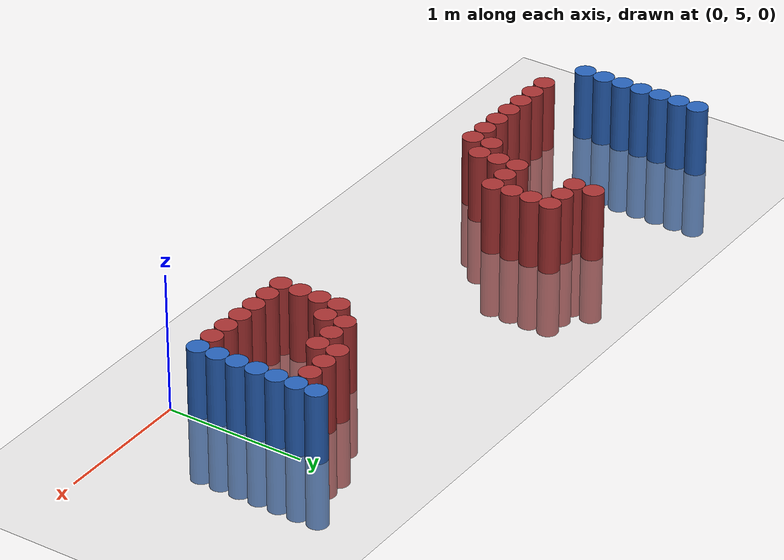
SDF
<sdf version="1.6">
 <world name="default">
  <model name="ground_plane">
   <static>1</static>
   <link name="link">
    <collision name="collision">
     <geometry><plane><normal>0 0 1</normal><size>100 100</size></plane></geometry>
     <surface><friction><ode><mu>100</mu><mu2>50</mu2></ode></friction></surface>
    </collision>
    <visual name="visual">
     <cast_shadows>0</cast_shadows>
     <geometry><plane><normal>0 0 1</normal><size>100 100</size></plane></geometry>
     <material>
      <script><uri>file://media/materials/scripts/gazebo.material</uri><name>Gazebo/Grey</name></script>
     </material>
    </visual>
   </link>
  </model>
  <model name="unit_cylinder_97">
   <static>1</static>
   <pose>-4.425000 5.325000 0.000000 0.000000 0.000000 0.000000</pose>
   <link name="link">
    <inertial>
     <mass>1</mass>
     <inertia><ixx>0.145833</ixx><ixy>0</ixy><ixz>0</ixz><iyy>0.145833</iyy><iyz>0</iyz><izz>0.125</izz></inertia>
    </inertial>
    <collision name="collision">
     <geometry><cylinder><radius>0.075000</radius><length>1</length></cylinder></geometry>
    </collision>
    <visual name="visual">
     <geometry><cylinder><radius>0.075000</radius><length>1</length></cylinder></geometry>
     <material>
      <ambient>0.152000 0.379000 0.720000 1</ambient>
      <diffuse>0.152000 0.379000 0.720000 1</diffuse>
     </material>
     <material>
      <script><name>Gazebo/Grey</name><uri>file://media/materials/scripts/gazebo.material</uri></script>
     </material>
    </visual>
   </link>
  </model>
  <model name="unit_cylinder_98">
   <static>1</static>
   <pose>-4.425000 5.475000 0.000000 0.000000 0.000000 0.000000</pose>
   <link name="link">
    <inertial>
     <mass>1</mass>
     <inertia><ixx>0.145833</ixx><ixy>0</ixy><ixz>0</ixz><iyy>0.145833</iyy><iyz>0</iyz><izz>0.125</izz></inertia>
    </inertial>
    <collision name="collision">
     <geometry><cylinder><radius>0.075000</radius><length>1</length></cylinder></geometry>
    </collision>
    <visual name="visual">
     <geometry><cylinder><radius>0.075000</radius><length>1</length></cylinder></geometry>
     <material>
      <ambient>0.152000 0.379000 0.720000 1</ambient>
      <diffuse>0.152000 0.379000 0.720000 1</diffuse>
     </material>
     <material>
      <script><name>Gazebo/Grey</name><uri>file://media/materials/scripts/gazebo.material</uri></script>
     </material>
    </visual>
   </link>
  </model>
  <model name="unit_cylinder_99">
   <static>1</static>
   <pose>-4.425000 5.625000 0.000000 0.000000 0.000000 0.000000</pose>
   <link name="link">
    <inertial>
     <mass>1</mass>
     <inertia><ixx>0.145833</ixx><ixy>0</ixy><ixz>0</ixz><iyy>0.145833</iyy><iyz>0</iyz><izz>0.125</izz></inertia>
    </inertial>
    <collision name="collision">
     <geometry><cylinder><radius>0.075000</radius><length>1</length></cylinder></geometry>
    </collision>
    <visual name="visual">
     <geometry><cylinder><radius>0.075000</radius><length>1</length></cylinder></geometry>
     <material>
      <ambient>0.152000 0.379000 0.720000 1</ambient>
      <diffuse>0.152000 0.379000 0.720000 1</diffuse>
     </material>
     <material>
      <script><name>Gazebo/Grey</name><uri>file://media/materials/scripts/gazebo.material</uri></script>
     </material>
    </visual>
   </link>
  </model>
  <model name="unit_cylinder_100">
   <static>1</static>
   <pose>-4.425000 5.775000 0.000000 0.000000 0.000000 0.000000</pose>
   <link name="link">
    <inertial>
     <mass>1</mass>
     <inertia><ixx>0.145833</ixx><ixy>0</ixy><ixz>0</ixz><iyy>0.145833</iyy><iyz>0</iyz><izz>0.125</izz></inertia>
    </inertial>
    <collision name="collision">
     <geometry><cylinder><radius>0.075000</radius><length>1</length></cylinder></geometry>
    </collision>
    <visual name="visual">
     <geometry><cylinder><radius>0.075000</radius><length>1</length></cylinder></geometry>
     <material>
      <ambient>0.152000 0.379000 0.720000 1</ambient>
      <diffuse>0.152000 0.379000 0.720000 1</diffuse>
     </material>
     <material>
      <script><name>Gazebo/Grey</name><uri>file://media/materials/scripts/gazebo.material</uri></script>
     </material>
    </visual>
   </link>
  </model>
  <model name="unit_cylinder_101">
   <static>1</static>
   <pose>-4.425000 5.925000 0.000000 0.000000 0.000000 0.000000</pose>
   <link name="link">
    <inertial>
     <mass>1</mass>
     <inertia><ixx>0.145833</ixx><ixy>0</ixy><ixz>0</ixz><iyy>0.145833</iyy><iyz>0</iyz><izz>0.125</izz></inertia>
    </inertial>
    <collision name="collision">
     <geometry><cylinder><radius>0.075000</radius><length>1</length></cylinder></geometry>
    </collision>
    <visual name="visual">
     <geometry><cylinder><radius>0.075000</radius><length>1</length></cylinder></geometry>
     <material>
      <ambient>0.152000 0.379000 0.720000 1</ambient>
      <diffuse>0.152000 0.379000 0.720000 1</diffuse>
     </material>
     <material>
      <script><name>Gazebo/Grey</name><uri>file://media/materials/scripts/gazebo.material</uri></script>
     </material>
    </visual>
   </link>
  </model>
  <model name="unit_cylinder_102">
   <static>1</static>
   <pose>-4.425000 6.075000 0.000000 0.000000 0.000000 0.000000</pose>
   <link name="link">
    <inertial>
     <mass>1</mass>
     <inertia><ixx>0.145833</ixx><ixy>0</ixy><ixz>0</ixz><iyy>0.145833</iyy><iyz>0</iyz><izz>0.125</izz></inertia>
    </inertial>
    <collision name="collision">
     <geometry><cylinder><radius>0.075000</radius><length>1</length></cylinder></geometry>
    </collision>
    <visual name="visual">
     <geometry><cylinder><radius>0.075000</radius><length>1</length></cylinder></geometry>
     <material>
      <ambient>0.152000 0.379000 0.720000 1</ambient>
      <diffuse>0.152000 0.379000 0.720000 1</diffuse>
     </material>
     <material>
      <script><name>Gazebo/Grey</name><uri>file://media/materials/scripts/gazebo.material</uri></script>
     </material>
    </visual>
   </link>
  </model>
  <model name="unit_cylinder_103">
   <static>1</static>
   <pose>-4.425000 6.225000 0.000000 0.000000 0.000000 0.000000</pose>
   <link name="link">
    <inertial>
     <mass>1</mass>
     <inertia><ixx>0.145833</ixx><ixy>0</ixy><ixz>0</ixz><iyy>0.145833</iyy><iyz>0</iyz><izz>0.125</izz></inertia>
    </inertial>
    <collision name="collision">
     <geometry><cylinder><radius>0.075000</radius><length>1</length></cylinder></geometry>
    </collision>
    <visual name="visual">
     <geometry><cylinder><radius>0.075000</radius><length>1</length></cylinder></geometry>
     <material>
      <ambient>0.152000 0.379000 0.720000 1</ambient>
      <diffuse>0.152000 0.379000 0.720000 1</diffuse>
     </material>
     <material>
      <script><name>Gazebo/Grey</name><uri>file://media/materials/scripts/gazebo.material</uri></script>
     </material>
    </visual>
   </link>
  </model>
  <model name="unit_cylinder_128">
   <static>1</static>
   <pose>-4.125000 5.175000 0.000000 0.000000 0.000000 0.000000</pose>
   <link name="link">
    <inertial>
     <mass>1</mass>
     <inertia><ixx>0.145833</ixx><ixy>0</ixy><ixz>0</ixz><iyy>0.145833</iyy><iyz>0</iyz><izz>0.125</izz></inertia>
    </inertial>
    <collision name="collision">
     <geometry><cylinder><radius>0.075000</radius><length>1</length></cylinder></geometry>
    </collision>
    <visual name="visual">
     <geometry><cylinder><radius>0.075000</radius><length>1</length></cylinder></geometry>
     <material>
      <ambient>0.648000 0.192000 0.192000 1</ambient>
      <diffuse>0.648000 0.192000 0.192000 1</diffuse>
     </material>
     <material>
      <script><name>Gazebo/Grey</name><uri>file://media/materials/scripts/gazebo.material</uri></script>
     </material>
    </visual>
   </link>
  </model>
  <model name="unit_cylinder_130">
   <static>1</static>
   <pose>-3.975000 5.175000 0.000000 0.000000 0.000000 0.000000</pose>
   <link name="link">
    <inertial>
     <mass>1</mass>
     <inertia><ixx>0.145833</ixx><ixy>0</ixy><ixz>0</ixz><iyy>0.145833</iyy><iyz>0</iyz><izz>0.125</izz></inertia>
    </inertial>
    <collision name="collision">
     <geometry><cylinder><radius>0.075000</radius><length>1</length></cylinder></geometry>
    </collision>
    <visual name="visual">
     <geometry><cylinder><radius>0.075000</radius><length>1</length></cylinder></geometry>
     <material>
      <ambient>0.648000 0.192000 0.192000 1</ambient>
      <diffuse>0.648000 0.192000 0.192000 1</diffuse>
     </material>
     <material>
      <script><name>Gazebo/Grey</name><uri>file://media/materials/scripts/gazebo.material</uri></script>
     </material>
    </visual>
   </link>
  </model>
  <model name="unit_cylinder_132">
   <static>1</static>
   <pose>-3.825000 5.175000 0.000000 0.000000 0.000000 0.000000</pose>
   <link name="link">
    <inertial>
     <mass>1</mass>
     <inertia><ixx>0.145833</ixx><ixy>0</ixy><ixz>0</ixz><iyy>0.145833</iyy><iyz>0</iyz><izz>0.125</izz></inertia>
    </inertial>
    <collision name="collision">
     <geometry><cylinder><radius>0.075000</radius><length>1</length></cylinder></geometry>
    </collision>
    <visual name="visual">
     <geometry><cylinder><radius>0.075000</radius><length>1</length></cylinder></geometry>
     <material>
      <ambient>0.648000 0.192000 0.192000 1</ambient>
      <diffuse>0.648000 0.192000 0.192000 1</diffuse>
     </material>
     <material>
      <script><name>Gazebo/Grey</name><uri>file://media/materials/scripts/gazebo.material</uri></script>
     </material>
    </visual>
   </link>
  </model>
  <model name="unit_cylinder_135">
   <static>1</static>
   <pose>-3.675000 5.175000 0.000000 0.000000 0.000000 0.000000</pose>
   <link name="link">
    <inertial>
     <mass>1</mass>
     <inertia><ixx>0.145833</ixx><ixy>0</ixy><ixz>0</ixz><iyy>0.145833</iyy><iyz>0</iyz><izz>0.125</izz></inertia>
    </inertial>
    <collision name="collision">
     <geometry><cylinder><radius>0.075000</radius><length>1</length></cylinder></geometry>
    </collision>
    <visual name="visual">
     <geometry><cylinder><radius>0.075000</radius><length>1</length></cylinder></geometry>
     <material>
      <ambient>0.648000 0.192000 0.192000 1</ambient>
      <diffuse>0.648000 0.192000 0.192000 1</diffuse>
     </material>
     <material>
      <script><name>Gazebo/Grey</name><uri>file://media/materials/scripts/gazebo.material</uri></script>
     </material>
    </visual>
   </link>
  </model>
  <model name="unit_cylinder_144">
   <static>1</static>
   <pose>-3.525000 5.175000 0.000000 0.000000 0.000000 0.000000</pose>
   <link name="link">
    <inertial>
     <mass>1</mass>
     <inertia><ixx>0.145833</ixx><ixy>0</ixy><ixz>0</ixz><iyy>0.145833</iyy><iyz>0</iyz><izz>0.125</izz></inertia>
    </inertial>
    <collision name="collision">
     <geometry><cylinder><radius>0.075000</radius><length>1</length></cylinder></geometry>
    </collision>
    <visual name="visual">
     <geometry><cylinder><radius>0.075000</radius><length>1</length></cylinder></geometry>
     <material>
      <ambient>0.648000 0.192000 0.192000 1</ambient>
      <diffuse>0.648000 0.192000 0.192000 1</diffuse>
     </material>
     <material>
      <script><name>Gazebo/Grey</name><uri>file://media/materials/scripts/gazebo.material</uri></script>
     </material>
    </visual>
   </link>
  </model>
  <model name="unit_cylinder_157">
   <static>1</static>
   <pose>-3.375000 5.175000 0.000000 0.000000 0.000000 0.000000</pose>
   <link name="link">
    <inertial>
     <mass>1</mass>
     <inertia><ixx>0.145833</ixx><ixy>0</ixy><ixz>0</ixz><iyy>0.145833</iyy><iyz>0</iyz><izz>0.125</izz></inertia>
    </inertial>
    <collision name="collision">
     <geometry><cylinder><radius>0.075000</radius><length>1</length></cylinder></geometry>
    </collision>
    <visual name="visual">
     <geometry><cylinder><radius>0.075000</radius><length>1</length></cylinder></geometry>
     <material>
      <ambient>0.648000 0.192000 0.192000 1</ambient>
      <diffuse>0.648000 0.192000 0.192000 1</diffuse>
     </material>
     <material>
      <script><name>Gazebo/Grey</name><uri>file://media/materials/scripts/gazebo.material</uri></script>
     </material>
    </visual>
   </link>
  </model>
  <model name="unit_cylinder_164">
   <static>1</static>
   <pose>-3.225000 5.175000 0.000000 0.000000 0.000000 0.000000</pose>
   <link name="link">
    <inertial>
     <mass>1</mass>
     <inertia><ixx>0.145833</ixx><ixy>0</ixy><ixz>0</ixz><iyy>0.145833</iyy><iyz>0</iyz><izz>0.125</izz></inertia>
    </inertial>
    <collision name="collision">
     <geometry><cylinder><radius>0.075000</radius><length>1</length></cylinder></geometry>
    </collision>
    <visual name="visual">
     <geometry><cylinder><radius>0.075000</radius><length>1</length></cylinder></geometry>
     <material>
      <ambient>0.648000 0.192000 0.192000 1</ambient>
      <diffuse>0.648000 0.192000 0.192000 1</diffuse>
     </material>
     <material>
      <script><name>Gazebo/Grey</name><uri>file://media/materials/scripts/gazebo.material</uri></script>
     </material>
    </visual>
   </link>
  </model>
  <model name="unit_cylinder_165">
   <static>1</static>
   <pose>-3.225000 5.325000 0.000000 0.000000 0.000000 0.000000</pose>
   <link name="link">
    <inertial>
     <mass>1</mass>
     <inertia><ixx>0.145833</ixx><ixy>0</ixy><ixz>0</ixz><iyy>0.145833</iyy><iyz>0</iyz><izz>0.125</izz></inertia>
    </inertial>
    <collision name="collision">
     <geometry><cylinder><radius>0.075000</radius><length>1</length></cylinder></geometry>
    </collision>
    <visual name="visual">
     <geometry><cylinder><radius>0.075000</radius><length>1</length></cylinder></geometry>
     <material>
      <ambient>0.648000 0.192000 0.192000 1</ambient>
      <diffuse>0.648000 0.192000 0.192000 1</diffuse>
     </material>
     <material>
      <script><name>Gazebo/Grey</name><uri>file://media/materials/scripts/gazebo.material</uri></script>
     </material>
    </visual>
   </link>
  </model>
  <model name="unit_cylinder_169">
   <static>1</static>
   <pose>-3.075000 5.325000 0.000000 0.000000 0.000000 0.000000</pose>
   <link name="link">
    <inertial>
     <mass>1</mass>
     <inertia><ixx>0.145833</ixx><ixy>0</ixy><ixz>0</ixz><iyy>0.145833</iyy><iyz>0</iyz><izz>0.125</izz></inertia>
    </inertial>
    <collision name="collision">
     <geometry><cylinder><radius>0.075000</radius><length>1</length></cylinder></geometry>
    </collision>
    <visual name="visual">
     <geometry><cylinder><radius>0.075000</radius><length>1</length></cylinder></geometry>
     <material>
      <ambient>0.648000 0.192000 0.192000 1</ambient>
      <diffuse>0.648000 0.192000 0.192000 1</diffuse>
     </material>
     <material>
      <script><name>Gazebo/Grey</name><uri>file://media/materials/scripts/gazebo.material</uri></script>
     </material>
    </visual>
   </link>
  </model>
  <model name="unit_cylinder_170">
   <static>1</static>
   <pose>-3.075000 5.475000 0.000000 0.000000 0.000000 0.000000</pose>
   <link name="link">
    <inertial>
     <mass>1</mass>
     <inertia><ixx>0.145833</ixx><ixy>0</ixy><ixz>0</ixz><iyy>0.145833</iyy><iyz>0</iyz><izz>0.125</izz></inertia>
    </inertial>
    <collision name="collision">
     <geometry><cylinder><radius>0.075000</radius><length>1</length></cylinder></geometry>
    </collision>
    <visual name="visual">
     <geometry><cylinder><radius>0.075000</radius><length>1</length></cylinder></geometry>
     <material>
      <ambient>0.648000 0.192000 0.192000 1</ambient>
      <diffuse>0.648000 0.192000 0.192000 1</diffuse>
     </material>
     <material>
      <script><name>Gazebo/Grey</name><uri>file://media/materials/scripts/gazebo.material</uri></script>
     </material>
    </visual>
   </link>
  </model>
  <model name="unit_cylinder_171">
   <static>1</static>
   <pose>-3.075000 5.625000 0.000000 0.000000 0.000000 0.000000</pose>
   <link name="link">
    <inertial>
     <mass>1</mass>
     <inertia><ixx>0.145833</ixx><ixy>0</ixy><ixz>0</ixz><iyy>0.145833</iyy><iyz>0</iyz><izz>0.125</izz></inertia>
    </inertial>
    <collision name="collision">
     <geometry><cylinder><radius>0.075000</radius><length>1</length></cylinder></geometry>
    </collision>
    <visual name="visual">
     <geometry><cylinder><radius>0.075000</radius><length>1</length></cylinder></geometry>
     <material>
      <ambient>0.648000 0.192000 0.192000 1</ambient>
      <diffuse>0.648000 0.192000 0.192000 1</diffuse>
     </material>
     <material>
      <script><name>Gazebo/Grey</name><uri>file://media/materials/scripts/gazebo.material</uri></script>
     </material>
    </visual>
   </link>
  </model>
  <model name="unit_cylinder_172">
   <static>1</static>
   <pose>-3.075000 6.075000 0.000000 0.000000 0.000000 0.000000</pose>
   <link name="link">
    <inertial>
     <mass>1</mass>
     <inertia><ixx>0.145833</ixx><ixy>0</ixy><ixz>0</ixz><iyy>0.145833</iyy><iyz>0</iyz><izz>0.125</izz></inertia>
    </inertial>
    <collision name="collision">
     <geometry><cylinder><radius>0.075000</radius><length>1</length></cylinder></geometry>
    </collision>
    <visual name="visual">
     <geometry><cylinder><radius>0.075000</radius><length>1</length></cylinder></geometry>
     <material>
      <ambient>0.648000 0.192000 0.192000 1</ambient>
      <diffuse>0.648000 0.192000 0.192000 1</diffuse>
     </material>
     <material>
      <script><name>Gazebo/Grey</name><uri>file://media/materials/scripts/gazebo.material</uri></script>
     </material>
    </visual>
   </link>
  </model>
  <model name="unit_cylinder_173">
   <static>1</static>
   <pose>-3.075000 6.225000 0.000000 0.000000 0.000000 0.000000</pose>
   <link name="link">
    <inertial>
     <mass>1</mass>
     <inertia><ixx>0.145833</ixx><ixy>0</ixy><ixz>0</ixz><iyy>0.145833</iyy><iyz>0</iyz><izz>0.125</izz></inertia>
    </inertial>
    <collision name="collision">
     <geometry><cylinder><radius>0.075000</radius><length>1</length></cylinder></geometry>
    </collision>
    <visual name="visual">
     <geometry><cylinder><radius>0.075000</radius><length>1</length></cylinder></geometry>
     <material>
      <ambient>0.648000 0.192000 0.192000 1</ambient>
      <diffuse>0.648000 0.192000 0.192000 1</diffuse>
     </material>
     <material>
      <script><name>Gazebo/Grey</name><uri>file://media/materials/scripts/gazebo.material</uri></script>
     </material>
    </visual>
   </link>
  </model>
  <model name="unit_cylinder_177">
   <static>1</static>
   <pose>-2.925000 5.625000 0.000000 0.000000 0.000000 0.000000</pose>
   <link name="link">
    <inertial>
     <mass>1</mass>
     <inertia><ixx>0.145833</ixx><ixy>0</ixy><ixz>0</ixz><iyy>0.145833</iyy><iyz>0</iyz><izz>0.125</izz></inertia>
    </inertial>
    <collision name="collision">
     <geometry><cylinder><radius>0.075000</radius><length>1</length></cylinder></geometry>
    </collision>
    <visual name="visual">
     <geometry><cylinder><radius>0.075000</radius><length>1</length></cylinder></geometry>
     <material>
      <ambient>0.648000 0.192000 0.192000 1</ambient>
      <diffuse>0.648000 0.192000 0.192000 1</diffuse>
     </material>
     <material>
      <script><name>Gazebo/Grey</name><uri>file://media/materials/scripts/gazebo.material</uri></script>
     </material>
    </visual>
   </link>
  </model>
  <model name="unit_cylinder_178">
   <static>1</static>
   <pose>-2.925000 6.075000 0.000000 0.000000 0.000000 0.000000</pose>
   <link name="link">
    <inertial>
     <mass>1</mass>
     <inertia><ixx>0.145833</ixx><ixy>0</ixy><ixz>0</ixz><iyy>0.145833</iyy><iyz>0</iyz><izz>0.125</izz></inertia>
    </inertial>
    <collision name="collision">
     <geometry><cylinder><radius>0.075000</radius><length>1</length></cylinder></geometry>
    </collision>
    <visual name="visual">
     <geometry><cylinder><radius>0.075000</radius><length>1</length></cylinder></geometry>
     <material>
      <ambient>0.648000 0.192000 0.192000 1</ambient>
      <diffuse>0.648000 0.192000 0.192000 1</diffuse>
     </material>
     <material>
      <script><name>Gazebo/Grey</name><uri>file://media/materials/scripts/gazebo.material</uri></script>
     </material>
    </visual>
   </link>
  </model>
  <model name="unit_cylinder_182">
   <static>1</static>
   <pose>-2.775000 5.625000 0.000000 0.000000 0.000000 0.000000</pose>
   <link name="link">
    <inertial>
     <mass>1</mass>
     <inertia><ixx>0.145833</ixx><ixy>0</ixy><ixz>0</ixz><iyy>0.145833</iyy><iyz>0</iyz><izz>0.125</izz></inertia>
    </inertial>
    <collision name="collision">
     <geometry><cylinder><radius>0.075000</radius><length>1</length></cylinder></geometry>
    </collision>
    <visual name="visual">
     <geometry><cylinder><radius>0.075000</radius><length>1</length></cylinder></geometry>
     <material>
      <ambient>0.648000 0.192000 0.192000 1</ambient>
      <diffuse>0.648000 0.192000 0.192000 1</diffuse>
     </material>
     <material>
      <script><name>Gazebo/Grey</name><uri>file://media/materials/scripts/gazebo.material</uri></script>
     </material>
    </visual>
   </link>
  </model>
  <model name="unit_cylinder_183">
   <static>1</static>
   <pose>-2.775000 5.775000 0.000000 0.000000 0.000000 0.000000</pose>
   <link name="link">
    <inertial>
     <mass>1</mass>
     <inertia><ixx>0.145833</ixx><ixy>0</ixy><ixz>0</ixz><iyy>0.145833</iyy><iyz>0</iyz><izz>0.125</izz></inertia>
    </inertial>
    <collision name="collision">
     <geometry><cylinder><radius>0.075000</radius><length>1</length></cylinder></geometry>
    </collision>
    <visual name="visual">
     <geometry><cylinder><radius>0.075000</radius><length>1</length></cylinder></geometry>
     <material>
      <ambient>0.648000 0.192000 0.192000 1</ambient>
      <diffuse>0.648000 0.192000 0.192000 1</diffuse>
     </material>
     <material>
      <script><name>Gazebo/Grey</name><uri>file://media/materials/scripts/gazebo.material</uri></script>
     </material>
    </visual>
   </link>
  </model>
  <model name="unit_cylinder_184">
   <static>1</static>
   <pose>-2.775000 5.925000 0.000000 0.000000 0.000000 0.000000</pose>
   <link name="link">
    <inertial>
     <mass>1</mass>
     <inertia><ixx>0.145833</ixx><ixy>0</ixy><ixz>0</ixz><iyy>0.145833</iyy><iyz>0</iyz><izz>0.125</izz></inertia>
    </inertial>
    <collision name="collision">
     <geometry><cylinder><radius>0.075000</radius><length>1</length></cylinder></geometry>
    </collision>
    <visual name="visual">
     <geometry><cylinder><radius>0.075000</radius><length>1</length></cylinder></geometry>
     <material>
      <ambient>0.648000 0.192000 0.192000 1</ambient>
      <diffuse>0.648000 0.192000 0.192000 1</diffuse>
     </material>
     <material>
      <script><name>Gazebo/Grey</name><uri>file://media/materials/scripts/gazebo.material</uri></script>
     </material>
    </visual>
   </link>
  </model>
  <model name="unit_cylinder_185">
   <static>1</static>
   <pose>-2.775000 6.075000 0.000000 0.000000 0.000000 0.000000</pose>
   <link name="link">
    <inertial>
     <mass>1</mass>
     <inertia><ixx>0.145833</ixx><ixy>0</ixy><ixz>0</ixz><iyy>0.145833</iyy><iyz>0</iyz><izz>0.125</izz></inertia>
    </inertial>
    <collision name="collision">
     <geometry><cylinder><radius>0.075000</radius><length>1</length></cylinder></geometry>
    </collision>
    <visual name="visual">
     <geometry><cylinder><radius>0.075000</radius><length>1</length></cylinder></geometry>
     <material>
      <ambient>0.648000 0.192000 0.192000 1</ambient>
      <diffuse>0.648000 0.192000 0.192000 1</diffuse>
     </material>
     <material>
      <script><name>Gazebo/Grey</name><uri>file://media/materials/scripts/gazebo.material</uri></script>
     </material>
    </visual>
   </link>
  </model>
  <model name="unit_cylinder_223">
   <static>1</static>
   <pose>-0.975000 5.175000 0.000000 0.000000 0.000000 0.000000</pose>
   <link name="link">
    <inertial>
     <mass>1</mass>
     <inertia><ixx>0.145833</ixx><ixy>0</ixy><ixz>0</ixz><iyy>0.145833</iyy><iyz>0</iyz><izz>0.125</izz></inertia>
    </inertial>
    <collision name="collision">
     <geometry><cylinder><radius>0.075000</radius><length>1</length></cylinder></geometry>
    </collision>
    <visual name="visual">
     <geometry><cylinder><radius>0.075000</radius><length>1</length></cylinder></geometry>
     <material>
      <ambient>0.648000 0.192000 0.192000 1</ambient>
      <diffuse>0.648000 0.192000 0.192000 1</diffuse>
     </material>
     <material>
      <script><name>Gazebo/Grey</name><uri>file://media/materials/scripts/gazebo.material</uri></script>
     </material>
    </visual>
   </link>
  </model>
  <model name="unit_cylinder_224">
   <static>1</static>
   <pose>-0.975000 5.325000 0.000000 0.000000 0.000000 0.000000</pose>
   <link name="link">
    <inertial>
     <mass>1</mass>
     <inertia><ixx>0.145833</ixx><ixy>0</ixy><ixz>0</ixz><iyy>0.145833</iyy><iyz>0</iyz><izz>0.125</izz></inertia>
    </inertial>
    <collision name="collision">
     <geometry><cylinder><radius>0.075000</radius><length>1</length></cylinder></geometry>
    </collision>
    <visual name="visual">
     <geometry><cylinder><radius>0.075000</radius><length>1</length></cylinder></geometry>
     <material>
      <ambient>0.648000 0.192000 0.192000 1</ambient>
      <diffuse>0.648000 0.192000 0.192000 1</diffuse>
     </material>
     <material>
      <script><name>Gazebo/Grey</name><uri>file://media/materials/scripts/gazebo.material</uri></script>
     </material>
    </visual>
   </link>
  </model>
  <model name="unit_cylinder_225">
   <static>1</static>
   <pose>-0.975000 5.475000 0.000000 0.000000 0.000000 0.000000</pose>
   <link name="link">
    <inertial>
     <mass>1</mass>
     <inertia><ixx>0.145833</ixx><ixy>0</ixy><ixz>0</ixz><iyy>0.145833</iyy><iyz>0</iyz><izz>0.125</izz></inertia>
    </inertial>
    <collision name="collision">
     <geometry><cylinder><radius>0.075000</radius><length>1</length></cylinder></geometry>
    </collision>
    <visual name="visual">
     <geometry><cylinder><radius>0.075000</radius><length>1</length></cylinder></geometry>
     <material>
      <ambient>0.648000 0.192000 0.192000 1</ambient>
      <diffuse>0.648000 0.192000 0.192000 1</diffuse>
     </material>
     <material>
      <script><name>Gazebo/Grey</name><uri>file://media/materials/scripts/gazebo.material</uri></script>
     </material>
    </visual>
   </link>
  </model>
  <model name="unit_cylinder_226">
   <static>1</static>
   <pose>-0.975000 5.625000 0.000000 0.000000 0.000000 0.000000</pose>
   <link name="link">
    <inertial>
     <mass>1</mass>
     <inertia><ixx>0.145833</ixx><ixy>0</ixy><ixz>0</ixz><iyy>0.145833</iyy><iyz>0</iyz><izz>0.125</izz></inertia>
    </inertial>
    <collision name="collision">
     <geometry><cylinder><radius>0.075000</radius><length>1</length></cylinder></geometry>
    </collision>
    <visual name="visual">
     <geometry><cylinder><radius>0.075000</radius><length>1</length></cylinder></geometry>
     <material>
      <ambient>0.648000 0.192000 0.192000 1</ambient>
      <diffuse>0.648000 0.192000 0.192000 1</diffuse>
     </material>
     <material>
      <script><name>Gazebo/Grey</name><uri>file://media/materials/scripts/gazebo.material</uri></script>
     </material>
    </visual>
   </link>
  </model>
  <model name="unit_cylinder_233">
   <static>1</static>
   <pose>-0.825000 5.175000 0.000000 0.000000 0.000000 0.000000</pose>
   <link name="link">
    <inertial>
     <mass>1</mass>
     <inertia><ixx>0.145833</ixx><ixy>0</ixy><ixz>0</ixz><iyy>0.145833</iyy><iyz>0</iyz><izz>0.125</izz></inertia>
    </inertial>
    <collision name="collision">
     <geometry><cylinder><radius>0.075000</radius><length>1</length></cylinder></geometry>
    </collision>
    <visual name="visual">
     <geometry><cylinder><radius>0.075000</radius><length>1</length></cylinder></geometry>
     <material>
      <ambient>0.648000 0.192000 0.192000 1</ambient>
      <diffuse>0.648000 0.192000 0.192000 1</diffuse>
     </material>
     <material>
      <script><name>Gazebo/Grey</name><uri>file://media/materials/scripts/gazebo.material</uri></script>
     </material>
    </visual>
   </link>
  </model>
  <model name="unit_cylinder_234">
   <static>1</static>
   <pose>-0.825000 5.625000 0.000000 0.000000 0.000000 0.000000</pose>
   <link name="link">
    <inertial>
     <mass>1</mass>
     <inertia><ixx>0.145833</ixx><ixy>0</ixy><ixz>0</ixz><iyy>0.145833</iyy><iyz>0</iyz><izz>0.125</izz></inertia>
    </inertial>
    <collision name="collision">
     <geometry><cylinder><radius>0.075000</radius><length>1</length></cylinder></geometry>
    </collision>
    <visual name="visual">
     <geometry><cylinder><radius>0.075000</radius><length>1</length></cylinder></geometry>
     <material>
      <ambient>0.648000 0.192000 0.192000 1</ambient>
      <diffuse>0.648000 0.192000 0.192000 1</diffuse>
     </material>
     <material>
      <script><name>Gazebo/Grey</name><uri>file://media/materials/scripts/gazebo.material</uri></script>
     </material>
    </visual>
   </link>
  </model>
  <model name="unit_cylinder_235">
   <static>1</static>
   <pose>-0.825000 5.775000 0.000000 0.000000 0.000000 0.000000</pose>
   <link name="link">
    <inertial>
     <mass>1</mass>
     <inertia><ixx>0.145833</ixx><ixy>0</ixy><ixz>0</ixz><iyy>0.145833</iyy><iyz>0</iyz><izz>0.125</izz></inertia>
    </inertial>
    <collision name="collision">
     <geometry><cylinder><radius>0.075000</radius><length>1</length></cylinder></geometry>
    </collision>
    <visual name="visual">
     <geometry><cylinder><radius>0.075000</radius><length>1</length></cylinder></geometry>
     <material>
      <ambient>0.648000 0.192000 0.192000 1</ambient>
      <diffuse>0.648000 0.192000 0.192000 1</diffuse>
     </material>
     <material>
      <script><name>Gazebo/Grey</name><uri>file://media/materials/scripts/gazebo.material</uri></script>
     </material>
    </visual>
   </link>
  </model>
  <model name="unit_cylinder_241">
   <static>1</static>
   <pose>-0.675000 5.175000 0.000000 0.000000 0.000000 0.000000</pose>
   <link name="link">
    <inertial>
     <mass>1</mass>
     <inertia><ixx>0.145833</ixx><ixy>0</ixy><ixz>0</ixz><iyy>0.145833</iyy><iyz>0</iyz><izz>0.125</izz></inertia>
    </inertial>
    <collision name="collision">
     <geometry><cylinder><radius>0.075000</radius><length>1</length></cylinder></geometry>
    </collision>
    <visual name="visual">
     <geometry><cylinder><radius>0.075000</radius><length>1</length></cylinder></geometry>
     <material>
      <ambient>0.648000 0.192000 0.192000 1</ambient>
      <diffuse>0.648000 0.192000 0.192000 1</diffuse>
     </material>
     <material>
      <script><name>Gazebo/Grey</name><uri>file://media/materials/scripts/gazebo.material</uri></script>
     </material>
    </visual>
   </link>
  </model>
  <model name="unit_cylinder_242">
   <static>1</static>
   <pose>-0.675000 5.775000 0.000000 0.000000 0.000000 0.000000</pose>
   <link name="link">
    <inertial>
     <mass>1</mass>
     <inertia><ixx>0.145833</ixx><ixy>0</ixy><ixz>0</ixz><iyy>0.145833</iyy><iyz>0</iyz><izz>0.125</izz></inertia>
    </inertial>
    <collision name="collision">
     <geometry><cylinder><radius>0.075000</radius><length>1</length></cylinder></geometry>
    </collision>
    <visual name="visual">
     <geometry><cylinder><radius>0.075000</radius><length>1</length></cylinder></geometry>
     <material>
      <ambient>0.648000 0.192000 0.192000 1</ambient>
      <diffuse>0.648000 0.192000 0.192000 1</diffuse>
     </material>
     <material>
      <script><name>Gazebo/Grey</name><uri>file://media/materials/scripts/gazebo.material</uri></script>
     </material>
    </visual>
   </link>
  </model>
  <model name="unit_cylinder_247">
   <static>1</static>
   <pose>-0.525000 5.175000 0.000000 0.000000 0.000000 0.000000</pose>
   <link name="link">
    <inertial>
     <mass>1</mass>
     <inertia><ixx>0.145833</ixx><ixy>0</ixy><ixz>0</ixz><iyy>0.145833</iyy><iyz>0</iyz><izz>0.125</izz></inertia>
    </inertial>
    <collision name="collision">
     <geometry><cylinder><radius>0.075000</radius><length>1</length></cylinder></geometry>
    </collision>
    <visual name="visual">
     <geometry><cylinder><radius>0.075000</radius><length>1</length></cylinder></geometry>
     <material>
      <ambient>0.648000 0.192000 0.192000 1</ambient>
      <diffuse>0.648000 0.192000 0.192000 1</diffuse>
     </material>
     <material>
      <script><name>Gazebo/Grey</name><uri>file://media/materials/scripts/gazebo.material</uri></script>
     </material>
    </visual>
   </link>
  </model>
  <model name="unit_cylinder_248">
   <static>1</static>
   <pose>-0.525000 5.775000 0.000000 0.000000 0.000000 0.000000</pose>
   <link name="link">
    <inertial>
     <mass>1</mass>
     <inertia><ixx>0.145833</ixx><ixy>0</ixy><ixz>0</ixz><iyy>0.145833</iyy><iyz>0</iyz><izz>0.125</izz></inertia>
    </inertial>
    <collision name="collision">
     <geometry><cylinder><radius>0.075000</radius><length>1</length></cylinder></geometry>
    </collision>
    <visual name="visual">
     <geometry><cylinder><radius>0.075000</radius><length>1</length></cylinder></geometry>
     <material>
      <ambient>0.648000 0.192000 0.192000 1</ambient>
      <diffuse>0.648000 0.192000 0.192000 1</diffuse>
     </material>
     <material>
      <script><name>Gazebo/Grey</name><uri>file://media/materials/scripts/gazebo.material</uri></script>
     </material>
    </visual>
   </link>
  </model>
  <model name="unit_cylinder_249">
   <static>1</static>
   <pose>-0.525000 5.925000 0.000000 0.000000 0.000000 0.000000</pose>
   <link name="link">
    <inertial>
     <mass>1</mass>
     <inertia><ixx>0.145833</ixx><ixy>0</ixy><ixz>0</ixz><iyy>0.145833</iyy><iyz>0</iyz><izz>0.125</izz></inertia>
    </inertial>
    <collision name="collision">
     <geometry><cylinder><radius>0.075000</radius><length>1</length></cylinder></geometry>
    </collision>
    <visual name="visual">
     <geometry><cylinder><radius>0.075000</radius><length>1</length></cylinder></geometry>
     <material>
      <ambient>0.648000 0.192000 0.192000 1</ambient>
      <diffuse>0.648000 0.192000 0.192000 1</diffuse>
     </material>
     <material>
      <script><name>Gazebo/Grey</name><uri>file://media/materials/scripts/gazebo.material</uri></script>
     </material>
    </visual>
   </link>
  </model>
  <model name="unit_cylinder_256">
   <static>1</static>
   <pose>-0.375000 5.175000 0.000000 0.000000 0.000000 0.000000</pose>
   <link name="link">
    <inertial>
     <mass>1</mass>
     <inertia><ixx>0.145833</ixx><ixy>0</ixy><ixz>0</ixz><iyy>0.145833</iyy><iyz>0</iyz><izz>0.125</izz></inertia>
    </inertial>
    <collision name="collision">
     <geometry><cylinder><radius>0.075000</radius><length>1</length></cylinder></geometry>
    </collision>
    <visual name="visual">
     <geometry><cylinder><radius>0.075000</radius><length>1</length></cylinder></geometry>
     <material>
      <ambient>0.648000 0.192000 0.192000 1</ambient>
      <diffuse>0.648000 0.192000 0.192000 1</diffuse>
     </material>
     <material>
      <script><name>Gazebo/Grey</name><uri>file://media/materials/scripts/gazebo.material</uri></script>
     </material>
    </visual>
   </link>
  </model>
  <model name="unit_cylinder_257">
   <static>1</static>
   <pose>-0.375000 5.925000 0.000000 0.000000 0.000000 0.000000</pose>
   <link name="link">
    <inertial>
     <mass>1</mass>
     <inertia><ixx>0.145833</ixx><ixy>0</ixy><ixz>0</ixz><iyy>0.145833</iyy><iyz>0</iyz><izz>0.125</izz></inertia>
    </inertial>
    <collision name="collision">
     <geometry><cylinder><radius>0.075000</radius><length>1</length></cylinder></geometry>
    </collision>
    <visual name="visual">
     <geometry><cylinder><radius>0.075000</radius><length>1</length></cylinder></geometry>
     <material>
      <ambient>0.648000 0.192000 0.192000 1</ambient>
      <diffuse>0.648000 0.192000 0.192000 1</diffuse>
     </material>
     <material>
      <script><name>Gazebo/Grey</name><uri>file://media/materials/scripts/gazebo.material</uri></script>
     </material>
    </visual>
   </link>
  </model>
  <model name="unit_cylinder_260">
   <static>1</static>
   <pose>-0.225000 5.175000 0.000000 0.000000 0.000000 0.000000</pose>
   <link name="link">
    <inertial>
     <mass>1</mass>
     <inertia><ixx>0.145833</ixx><ixy>0</ixy><ixz>0</ixz><iyy>0.145833</iyy><iyz>0</iyz><izz>0.125</izz></inertia>
    </inertial>
    <collision name="collision">
     <geometry><cylinder><radius>0.075000</radius><length>1</length></cylinder></geometry>
    </collision>
    <visual name="visual">
     <geometry><cylinder><radius>0.075000</radius><length>1</length></cylinder></geometry>
     <material>
      <ambient>0.648000 0.192000 0.192000 1</ambient>
      <diffuse>0.648000 0.192000 0.192000 1</diffuse>
     </material>
     <material>
      <script><name>Gazebo/Grey</name><uri>file://media/materials/scripts/gazebo.material</uri></script>
     </material>
    </visual>
   </link>
  </model>
  <model name="unit_cylinder_261">
   <static>1</static>
   <pose>-0.225000 5.925000 0.000000 0.000000 0.000000 0.000000</pose>
   <link name="link">
    <inertial>
     <mass>1</mass>
     <inertia><ixx>0.145833</ixx><ixy>0</ixy><ixz>0</ixz><iyy>0.145833</iyy><iyz>0</iyz><izz>0.125</izz></inertia>
    </inertial>
    <collision name="collision">
     <geometry><cylinder><radius>0.075000</radius><length>1</length></cylinder></geometry>
    </collision>
    <visual name="visual">
     <geometry><cylinder><radius>0.075000</radius><length>1</length></cylinder></geometry>
     <material>
      <ambient>0.648000 0.192000 0.192000 1</ambient>
      <diffuse>0.648000 0.192000 0.192000 1</diffuse>
     </material>
     <material>
      <script><name>Gazebo/Grey</name><uri>file://media/materials/scripts/gazebo.material</uri></script>
     </material>
    </visual>
   </link>
  </model>
  <model name="unit_cylinder_264">
   <static>1</static>
   <pose>-0.075000 5.175000 0.000000 0.000000 0.000000 0.000000</pose>
   <link name="link">
    <inertial>
     <mass>1</mass>
     <inertia><ixx>0.145833</ixx><ixy>0</ixy><ixz>0</ixz><iyy>0.145833</iyy><iyz>0</iyz><izz>0.125</izz></inertia>
    </inertial>
    <collision name="collision">
     <geometry><cylinder><radius>0.075000</radius><length>1</length></cylinder></geometry>
    </collision>
    <visual name="visual">
     <geometry><cylinder><radius>0.075000</radius><length>1</length></cylinder></geometry>
     <material>
      <ambient>0.152000 0.379000 0.720000 1</ambient>
      <diffuse>0.152000 0.379000 0.720000 1</diffuse>
     </material>
     <material>
      <script><name>Gazebo/Grey</name><uri>file://media/materials/scripts/gazebo.material</uri></script>
     </material>
    </visual>
   </link>
  </model>
  <model name="unit_cylinder_265">
   <static>1</static>
   <pose>-0.075000 5.325000 0.000000 0.000000 0.000000 0.000000</pose>
   <link name="link">
    <inertial>
     <mass>1</mass>
     <inertia><ixx>0.145833</ixx><ixy>0</ixy><ixz>0</ixz><iyy>0.145833</iyy><iyz>0</iyz><izz>0.125</izz></inertia>
    </inertial>
    <collision name="collision">
     <geometry><cylinder><radius>0.075000</radius><length>1</length></cylinder></geometry>
    </collision>
    <visual name="visual">
     <geometry><cylinder><radius>0.075000</radius><length>1</length></cylinder></geometry>
     <material>
      <ambient>0.152000 0.379000 0.720000 1</ambient>
      <diffuse>0.152000 0.379000 0.720000 1</diffuse>
     </material>
     <material>
      <script><name>Gazebo/Grey</name><uri>file://media/materials/scripts/gazebo.material</uri></script>
     </material>
    </visual>
   </link>
  </model>
  <model name="unit_cylinder_266">
   <static>1</static>
   <pose>-0.075000 5.475000 0.000000 0.000000 0.000000 0.000000</pose>
   <link name="link">
    <inertial>
     <mass>1</mass>
     <inertia><ixx>0.145833</ixx><ixy>0</ixy><ixz>0</ixz><iyy>0.145833</iyy><iyz>0</iyz><izz>0.125</izz></inertia>
    </inertial>
    <collision name="collision">
     <geometry><cylinder><radius>0.075000</radius><length>1</length></cylinder></geometry>
    </collision>
    <visual name="visual">
     <geometry><cylinder><radius>0.075000</radius><length>1</length></cylinder></geometry>
     <material>
      <ambient>0.152000 0.379000 0.720000 1</ambient>
      <diffuse>0.152000 0.379000 0.720000 1</diffuse>
     </material>
     <material>
      <script><name>Gazebo/Grey</name><uri>file://media/materials/scripts/gazebo.material</uri></script>
     </material>
    </visual>
   </link>
  </model>
  <model name="unit_cylinder_267">
   <static>1</static>
   <pose>-0.075000 5.625000 0.000000 0.000000 0.000000 0.000000</pose>
   <link name="link">
    <inertial>
     <mass>1</mass>
     <inertia><ixx>0.145833</ixx><ixy>0</ixy><ixz>0</ixz><iyy>0.145833</iyy><iyz>0</iyz><izz>0.125</izz></inertia>
    </inertial>
    <collision name="collision">
     <geometry><cylinder><radius>0.075000</radius><length>1</length></cylinder></geometry>
    </collision>
    <visual name="visual">
     <geometry><cylinder><radius>0.075000</radius><length>1</length></cylinder></geometry>
     <material>
      <ambient>0.152000 0.379000 0.720000 1</ambient>
      <diffuse>0.152000 0.379000 0.720000 1</diffuse>
     </material>
     <material>
      <script><name>Gazebo/Grey</name><uri>file://media/materials/scripts/gazebo.material</uri></script>
     </material>
    </visual>
   </link>
  </model>
  <model name="unit_cylinder_268">
   <static>1</static>
   <pose>-0.075000 5.775000 0.000000 0.000000 0.000000 0.000000</pose>
   <link name="link">
    <inertial>
     <mass>1</mass>
     <inertia><ixx>0.145833</ixx><ixy>0</ixy><ixz>0</ixz><iyy>0.145833</iyy><iyz>0</iyz><izz>0.125</izz></inertia>
    </inertial>
    <collision name="collision">
     <geometry><cylinder><radius>0.075000</radius><length>1</length></cylinder></geometry>
    </collision>
    <visual name="visual">
     <geometry><cylinder><radius>0.075000</radius><length>1</length></cylinder></geometry>
     <material>
      <ambient>0.152000 0.379000 0.720000 1</ambient>
      <diffuse>0.152000 0.379000 0.720000 1</diffuse>
     </material>
     <material>
      <script><name>Gazebo/Grey</name><uri>file://media/materials/scripts/gazebo.material</uri></script>
     </material>
    </visual>
   </link>
  </model>
  <model name="unit_cylinder_269">
   <static>1</static>
   <pose>-0.075000 5.925000 0.000000 0.000000 0.000000 0.000000</pose>
   <link name="link">
    <inertial>
     <mass>1</mass>
     <inertia><ixx>0.145833</ixx><ixy>0</ixy><ixz>0</ixz><iyy>0.145833</iyy><iyz>0</iyz><izz>0.125</izz></inertia>
    </inertial>
    <collision name="collision">
     <geometry><cylinder><radius>0.075000</radius><length>1</length></cylinder></geometry>
    </collision>
    <visual name="visual">
     <geometry><cylinder><radius>0.075000</radius><length>1</length></cylinder></geometry>
     <material>
      <ambient>0.152000 0.379000 0.720000 1</ambient>
      <diffuse>0.152000 0.379000 0.720000 1</diffuse>
     </material>
     <material>
      <script><name>Gazebo/Grey</name><uri>file://media/materials/scripts/gazebo.material</uri></script>
     </material>
    </visual>
   </link>
  </model>
  <model name="unit_cylinder_270">
   <static>1</static>
   <pose>-0.075000 6.075000 0.000000 0.000000 0.000000 0.000000</pose>
   <link name="link">
    <inertial>
     <mass>1</mass>
     <inertia><ixx>0.145833</ixx><ixy>0</ixy><ixz>0</ixz><iyy>0.145833</iyy><iyz>0</iyz><izz>0.125</izz></inertia>
    </inertial>
    <collision name="collision">
     <geometry><cylinder><radius>0.075000</radius><length>1</length></cylinder></geometry>
    </collision>
    <visual name="visual">
     <geometry><cylinder><radius>0.075000</radius><length>1</length></cylinder></geometry>
     <material>
      <ambient>0.152000 0.379000 0.720000 1</ambient>
      <diffuse>0.152000 0.379000 0.720000 1</diffuse>
     </material>
     <material>
      <script><name>Gazebo/Grey</name><uri>file://media/materials/scripts/gazebo.material</uri></script>
     </material>
    </visual>
   </link>
  </model>
 </world>
</sdf>
